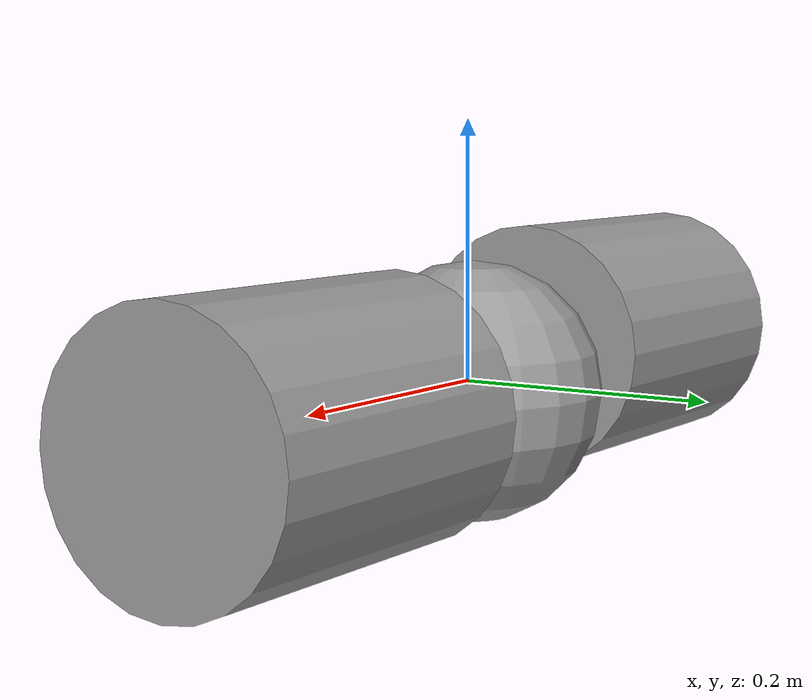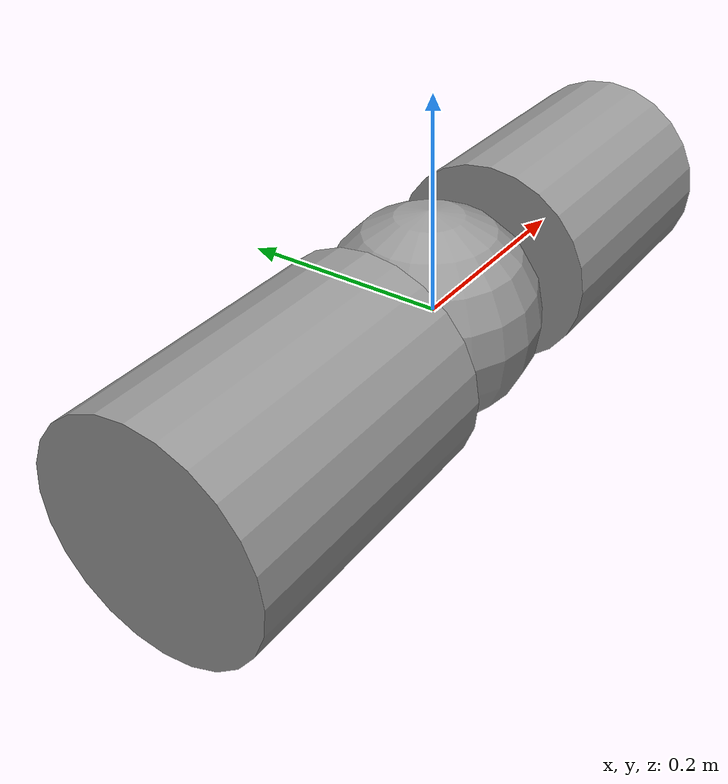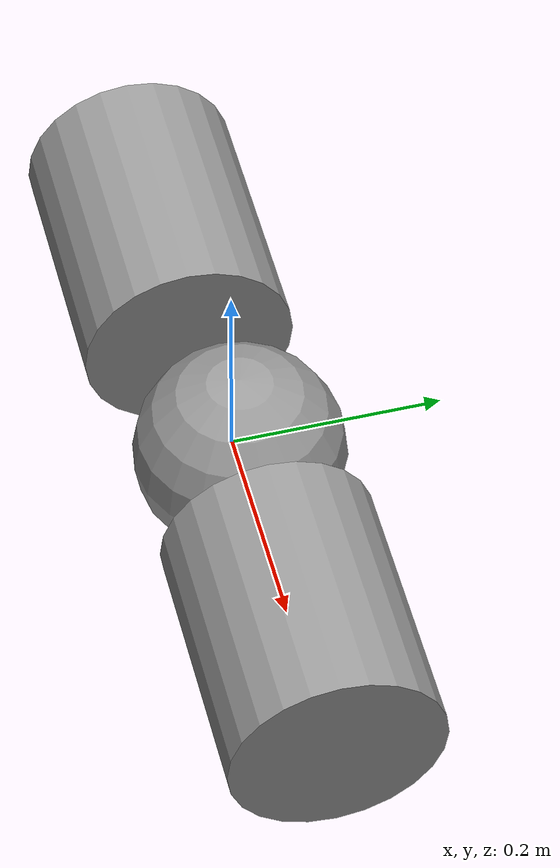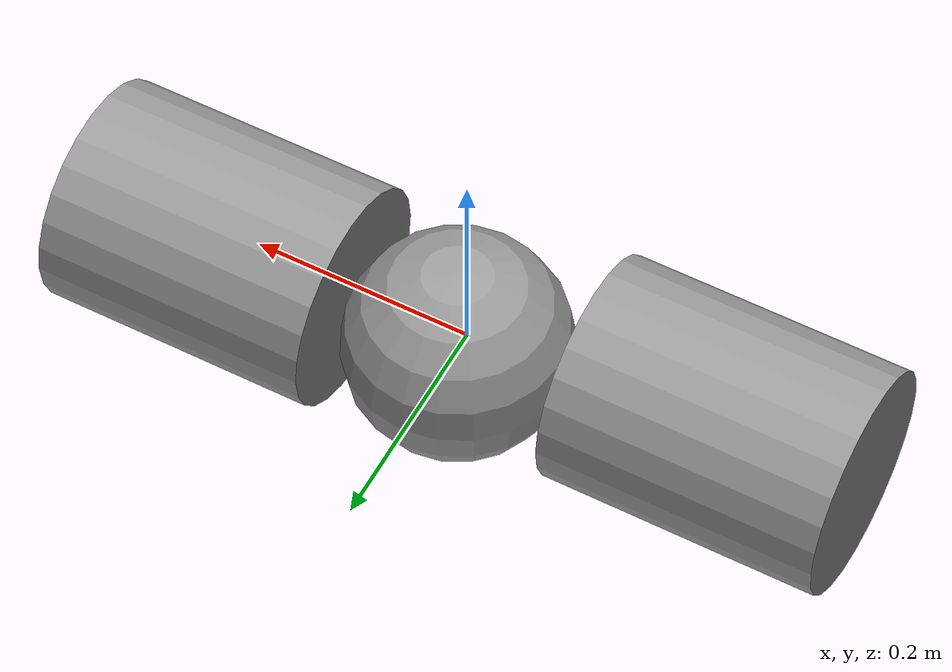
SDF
<?xml version='1.0'?>
<sdf version='1.6'>
  <model name='worm'>
    <link name='link_4'>
      <inertial>
        <mass>1</mass>
        <inertia>
          <ixx>0.145833</ixx>
          <ixy>0</ixy>
          <ixz>0</ixz>
          <iyy>0.145833</iyy>
          <iyz>0</iyz>
          <izz>0.125</izz>
        </inertia>
        <pose frame=''>0 0 0 0 -0 0</pose>
      </inertial>
      <pose frame=''>-0.235013 -0.013332 0.013333 0 1.5707 0</pose>
      <gravity>1</gravity>
      <self_collide>0</self_collide>
      <kinematic>0</kinematic>
      <enable_wind>0</enable_wind>
      <visual name='visual'>
        <pose frame=''>0 0 0 0 -0 0</pose>
        <geometry>
          <cylinder>
            <radius>0.1</radius>
            <length>0.25</length>
          </cylinder>
        </geometry>
        <material>
          <lighting>1</lighting>
          <script>
            <uri>file://media/materials/scripts/gazebo.material</uri>
            <name>Gazebo/Grey</name>
          </script>
          <shader type='pixel'>
            <normal_map>__default__</normal_map>
          </shader>
          <ambient>0.3 0.3 0.3 1</ambient>
          <diffuse>0.7 0.7 0.7 1</diffuse>
          <specular>0.01 0.01 0.01 1</specular>
          <emissive>0 0 0 1</emissive>
        </material>
        <transparency>0</transparency>
        <cast_shadows>1</cast_shadows>
      </visual>
      <collision name='collision'>
        <laser_retro>0</laser_retro>
        <max_contacts>10</max_contacts>
        <pose frame=''>0 0 0 0 -0 0</pose>
        <geometry>
          <cylinder>
            <radius>0.1</radius>
            <length>0.25</length>
          </cylinder>
        </geometry>
        <surface>
          <friction>
            <ode>
              <mu>1</mu>
              <mu2>1</mu2>
              <fdir1>0 0 0</fdir1>
              <slip1>0</slip1>
              <slip2>0</slip2>
            </ode>
            <torsional>
              <coefficient>1</coefficient>
              <patch_radius>0</patch_radius>
              <surface_radius>0</surface_radius>
              <use_patch_radius>1</use_patch_radius>
              <ode>
                <slip>0</slip>
              </ode>
            </torsional>
          </friction>
          <bounce>
            <restitution_coefficient>0</restitution_coefficient>
            <threshold>1e+06</threshold>
          </bounce>
          <contact>
            <collide_without_contact>0</collide_without_contact>
            <collide_without_contact_bitmask>1</collide_without_contact_bitmask>
            <collide_bitmask>1</collide_bitmask>
            <ode>
              <soft_cfm>0</soft_cfm>
              <soft_erp>0.2</soft_erp>
              <kp>1e+13</kp>
              <kd>1</kd>
              <max_vel>0.01</max_vel>
              <min_depth>0</min_depth>
            </ode>
            <bullet>
              <split_impulse>1</split_impulse>
              <split_impulse_penetration_threshold>-0.01</split_impulse_penetration_threshold>
              <soft_cfm>0</soft_cfm>
              <soft_erp>0.2</soft_erp>
              <kp>1e+13</kp>
              <kd>1</kd>
            </bullet>
          </contact>
        </surface>
      </collision>
    </link>
    <link name='link_4_clone_1'>
      <inertial>
        <mass>1</mass>
        <inertia>
          <ixx>0.145833</ixx>
          <ixy>0</ixy>
          <ixz>0</ixz>
          <iyy>0.145833</iyy>
          <iyz>0</iyz>
          <izz>0.125</izz>
        </inertia>
        <pose frame=''>0 0 0 0 -0 0</pose>
      </inertial>
      <pose frame=''>0.23001 0.006668 -0.006666 0 1.5707 0</pose>
      <gravity>1</gravity>
      <self_collide>0</self_collide>
      <kinematic>0</kinematic>
      <enable_wind>0</enable_wind>
      <visual name='visual'>
        <pose frame=''>0 0 0 0 -0 0</pose>
        <geometry>
          <cylinder>
            <radius>0.1</radius>
            <length>0.25</length>
          </cylinder>
        </geometry>
        <material>
          <lighting>1</lighting>
          <script>
            <uri>file://media/materials/scripts/gazebo.material</uri>
            <name>Gazebo/Grey</name>
          </script>
          <shader type='pixel'>
            <normal_map>__default__</normal_map>
          </shader>
          <ambient>0.3 0.3 0.3 1</ambient>
          <diffuse>0.7 0.7 0.7 1</diffuse>
          <specular>0.01 0.01 0.01 1</specular>
          <emissive>0 0 0 1</emissive>
        </material>
        <transparency>0</transparency>
        <cast_shadows>1</cast_shadows>
      </visual>
      <collision name='collision'>
        <laser_retro>0</laser_retro>
        <max_contacts>10</max_contacts>
        <pose frame=''>0 0 0 0 -0 0</pose>
        <geometry>
          <cylinder>
            <radius>0.1</radius>
            <length>0.25</length>
          </cylinder>
        </geometry>
        <surface>
          <friction>
            <ode>
              <mu>1</mu>
              <mu2>1</mu2>
              <fdir1>0 0 0</fdir1>
              <slip1>0</slip1>
              <slip2>0</slip2>
            </ode>
            <torsional>
              <coefficient>1</coefficient>
              <patch_radius>0</patch_radius>
              <surface_radius>0</surface_radius>
              <use_patch_radius>1</use_patch_radius>
              <ode>
                <slip>0</slip>
              </ode>
            </torsional>
          </friction>
          <bounce>
            <restitution_coefficient>0</restitution_coefficient>
            <threshold>1e+06</threshold>
          </bounce>
          <contact>
            <collide_without_contact>0</collide_without_contact>
            <collide_without_contact_bitmask>1</collide_without_contact_bitmask>
            <collide_bitmask>1</collide_bitmask>
            <ode>
              <soft_cfm>0</soft_cfm>
              <soft_erp>0.2</soft_erp>
              <kp>1e+13</kp>
              <kd>1</kd>
              <max_vel>0.01</max_vel>
              <min_depth>0</min_depth>
            </ode>
            <bullet>
              <split_impulse>1</split_impulse>
              <split_impulse_penetration_threshold>-0.01</split_impulse_penetration_threshold>
              <soft_cfm>0</soft_cfm>
              <soft_erp>0.2</soft_erp>
              <kp>1e+13</kp>
              <kd>1</kd>
            </bullet>
          </contact>
        </surface>
      </collision>
    </link>
    <link name='link_5_clone_0'>
      <inertial>
        <mass>1</mass>
        <inertia>
          <ixx>0.1</ixx>
          <ixy>0</ixy>
          <ixz>0</ixz>
          <iyy>0.1</iyy>
          <iyz>0</iyz>
          <izz>0.1</izz>
        </inertia>
        <pose frame=''>0 0 0 0 -0 0</pose>
      </inertial>
      <pose frame=''>0.005001 0.006668 -0.006666 0 -0 0</pose>
      <gravity>1</gravity>
      <self_collide>0</self_collide>
      <kinematic>0</kinematic>
      <enable_wind>0</enable_wind>
      <visual name='visual'>
        <pose frame=''>0 0 0 0 -0 0</pose>
        <geometry>
          <sphere>
            <radius>0.1</radius>
          </sphere>
        </geometry>
        <material>
          <lighting>1</lighting>
          <script>
            <uri>file://media/materials/scripts/gazebo.material</uri>
            <name>Gazebo/Grey</name>
          </script>
          <shader type='pixel'>
            <normal_map>__default__</normal_map>
          </shader>
          <ambient>0.3 0.3 0.3 1</ambient>
          <diffuse>0.7 0.7 0.7 1</diffuse>
          <specular>0.01 0.01 0.01 1</specular>
          <emissive>0 0 0 1</emissive>
        </material>
        <transparency>0</transparency>
        <cast_shadows>1</cast_shadows>
      </visual>
      <collision name='collision'>
        <laser_retro>0</laser_retro>
        <max_contacts>10</max_contacts>
        <pose frame=''>0 0 0 0 -0 0</pose>
        <geometry>
          <sphere>
            <radius>0.1</radius>
          </sphere>
        </geometry>
        <surface>
          <friction>
            <ode>
              <mu>1</mu>
              <mu2>1</mu2>
              <fdir1>0 0 0</fdir1>
              <slip1>0</slip1>
              <slip2>0</slip2>
            </ode>
            <torsional>
              <coefficient>1</coefficient>
              <patch_radius>0</patch_radius>
              <surface_radius>0</surface_radius>
              <use_patch_radius>1</use_patch_radius>
              <ode>
                <slip>0</slip>
              </ode>
            </torsional>
          </friction>
          <bounce>
            <restitution_coefficient>0</restitution_coefficient>
            <threshold>1e+06</threshold>
          </bounce>
          <contact>
            <collide_without_contact>0</collide_without_contact>
            <collide_without_contact_bitmask>1</collide_without_contact_bitmask>
            <collide_bitmask>1</collide_bitmask>
            <ode>
              <soft_cfm>0</soft_cfm>
              <soft_erp>0.2</soft_erp>
              <kp>1e+13</kp>
              <kd>1</kd>
              <max_vel>0.01</max_vel>
              <min_depth>0</min_depth>
            </ode>
            <bullet>
              <split_impulse>1</split_impulse>
              <split_impulse_penetration_threshold>-0.01</split_impulse_penetration_threshold>
              <soft_cfm>0</soft_cfm>
              <soft_erp>0.2</soft_erp>
              <kp>1e+13</kp>
              <kd>1</kd>
            </bullet>
          </contact>
        </surface>
      </collision>
    </link>
    <joint name='link_5_clone_0_JOINT_17' type='revolute'>
      <parent>link_5_clone_0</parent>
      <child>link_4_clone_1</child>
      <pose frame=''>0 0 0 0 -0 0</pose>
      <axis>
        <xyz>1 0 0</xyz>
        <use_parent_model_frame>0</use_parent_model_frame>
        <limit>
          <lower>-1.79769e+308</lower>
          <upper>1.79769e+308</upper>
          <effort>-1</effort>
          <velocity>-1</velocity>
        </limit>
        <dynamics>
          <spring_reference>0</spring_reference>
          <spring_stiffness>0</spring_stiffness>
          <damping>0</damping>
        </dynamics>
      </axis>
      <physics>
        <ode>
          <limit>
            <cfm>0</cfm>
            <erp>0.2</erp>
          </limit>
          <suspension>
            <cfm>0</cfm>
            <erp>0.2</erp>
          </suspension>
        </ode>
      </physics>
    </joint>
    <joint name='link_5_clone_0_JOINT_18' type='revolute'>
      <parent>link_5_clone_0</parent>
      <child>link_4_clone_1</child>
      <pose frame=''>0 0 0 0 -0 0</pose>
      <axis>
        <xyz>0 1 0</xyz>
        <use_parent_model_frame>0</use_parent_model_frame>
        <limit>
          <lower>-1.79769e+308</lower>
          <upper>1.79769e+308</upper>
          <effort>-1</effort>
          <velocity>-1</velocity>
        </limit>
        <dynamics>
          <spring_reference>0</spring_reference>
          <spring_stiffness>0</spring_stiffness>
          <damping>0</damping>
        </dynamics>
      </axis>
      <physics>
        <ode>
          <limit>
            <cfm>0</cfm>
            <erp>0.2</erp>
          </limit>
          <suspension>
            <cfm>0</cfm>
            <erp>0.2</erp>
          </suspension>
        </ode>
      </physics>
    </joint>
    <joint name='link_5_clone_0_JOINT_19' type='revolute'>
      <parent>link_5_clone_0</parent>
      <child>link_4_clone_1</child>
      <pose frame=''>0 0 0 0 -0 0</pose>
      <axis>
        <xyz>0 0 1</xyz>
        <use_parent_model_frame>0</use_parent_model_frame>
        <limit>
          <lower>-1.79769e+308</lower>
          <upper>1.79769e+308</upper>
          <effort>-1</effort>
          <velocity>-1</velocity>
        </limit>
        <dynamics>
          <spring_reference>0</spring_reference>
          <spring_stiffness>0</spring_stiffness>
          <damping>0</damping>
        </dynamics>
      </axis>
      <physics>
        <ode>
          <limit>
            <cfm>0</cfm>
            <erp>0.2</erp>
          </limit>
          <suspension>
            <cfm>0</cfm>
            <erp>0.2</erp>
          </suspension>
        </ode>
      </physics>
    </joint>
    <joint name='link_5_clone_0_JOINT_21' type='revolute'>
      <parent>link_5_clone_0</parent>
      <child>link_4</child>
      <pose frame=''>0 0 0 0 -0 0</pose>
      <axis>
        <xyz>1 0 0</xyz>
        <use_parent_model_frame>0</use_parent_model_frame>
        <limit>
          <lower>-1.79769e+308</lower>
          <upper>1.79769e+308</upper>
          <effort>-1</effort>
          <velocity>-1</velocity>
        </limit>
        <dynamics>
          <spring_reference>0</spring_reference>
          <spring_stiffness>0</spring_stiffness>
          <damping>0</damping>
        </dynamics>
      </axis>
      <physics>
        <ode>
          <limit>
            <cfm>0</cfm>
            <erp>0.2</erp>
          </limit>
          <suspension>
            <cfm>0</cfm>
            <erp>0.2</erp>
          </suspension>
        </ode>
      </physics>
    </joint>
    <joint name='link_5_clone_0_JOINT_22' type='revolute'>
      <parent>link_5_clone_0</parent>
      <child>link_4</child>
      <pose frame=''>0 0 0 0 -0 0</pose>
      <axis>
        <xyz>0 1 0</xyz>
        <use_parent_model_frame>0</use_parent_model_frame>
        <limit>
          <lower>-1.79769e+308</lower>
          <upper>1.79769e+308</upper>
          <effort>-1</effort>
          <velocity>-1</velocity>
        </limit>
        <dynamics>
          <spring_reference>0</spring_reference>
          <spring_stiffness>0</spring_stiffness>
          <damping>0</damping>
        </dynamics>
      </axis>
      <physics>
        <ode>
          <limit>
            <cfm>0</cfm>
            <erp>0.2</erp>
          </limit>
          <suspension>
            <cfm>0</cfm>
            <erp>0.2</erp>
          </suspension>
        </ode>
      </physics>
    </joint>
    <joint name='link_5_clone_0_JOINT_23' type='revolute'>
      <parent>link_5_clone_0</parent>
      <child>link_4</child>
      <pose frame=''>0 0 0 0 -0 0</pose>
      <axis>
        <xyz>0 0 1</xyz>
        <use_parent_model_frame>0</use_parent_model_frame>
        <limit>
          <lower>-1.79769e+308</lower>
          <upper>1.79769e+308</upper>
          <effort>-1</effort>
          <velocity>-1</velocity>
        </limit>
        <dynamics>
          <spring_reference>0</spring_reference>
          <spring_stiffness>0</spring_stiffness>
          <damping>0</damping>
        </dynamics>
      </axis>
      <physics>
        <ode>
          <limit>
            <cfm>0</cfm>
            <erp>0.2</erp>
          </limit>
          <suspension>
            <cfm>0</cfm>
            <erp>0.2</erp>
          </suspension>
        </ode>
      </physics>
    </joint>
    <static>0</static>
    <allow_auto_disable>1</allow_auto_disable>
  </model>
</sdf>
